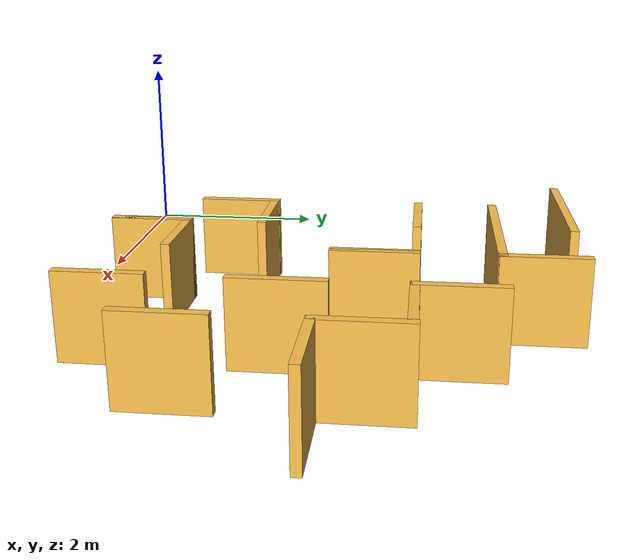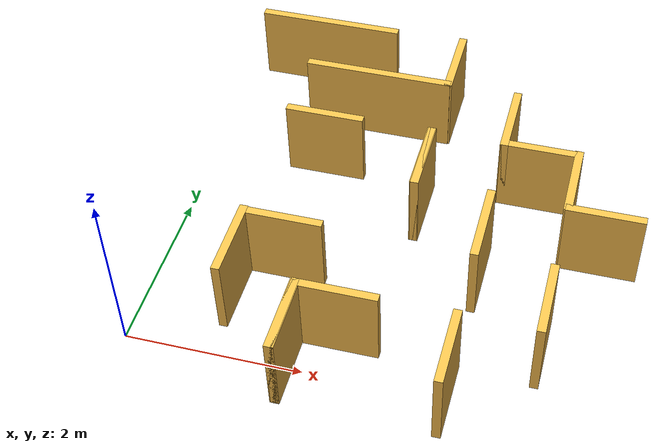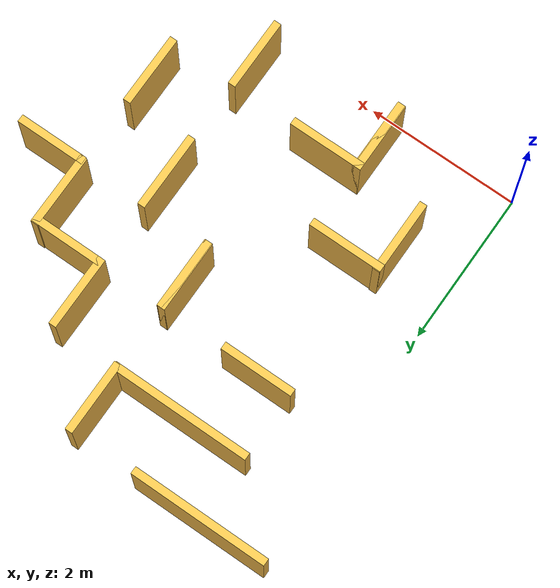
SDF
<sdf version="1.5">
 <model name="maze_train">
  <link name="Wall_19">
   <visual name="Wall_19_Visual">
    <pose>0.8 1.2449999999999999 0 0 0 0</pose>
    <geometry><box><size>0.1 0.99 1</size></box></geometry>
    <material>
     <script><uri>file://media/materials/scripts/gazebo.material</uri><name>Gazebo/Grey</name></script>
     <ambient>1 0.764706 0.305882 1</ambient>
     <diffuse>0.7 0.7 0.7 1</diffuse>
     <specular>0.01 0.01 0.01 1</specular>
     <emissive>0 0 0 1</emissive>
     <shader type="pixel"/>
    </material>
   </visual>
   <collision name="Wall_19_Collision">
    <pose>0.8 1.2449999999999999 0 0 0 0</pose>
    <geometry><box><size>0.1 0.99 1</size></box></geometry>
    <surface>
     <friction><ode><mu>1</mu><mu2>1</mu2><fdir1>0 0 0</fdir1><slip1>0</slip1><slip2>0</slip2></ode></friction>
     <bounce><restitution_coefficient>0</restitution_coefficient><threshold>1e+06</threshold></bounce>
     <contact>
      <collide_without_contact>0</collide_without_contact>
      <collide_without_contact_bitmask>1</collide_without_contact_bitmask>
      <collide_bitmask>1</collide_bitmask>
      <ode>
       <soft_cfm>0</soft_cfm>
       <soft_erp>0.2</soft_erp>
       <kp>1e+13</kp>
       <kd>1</kd>
       <max_vel>0.01</max_vel>
       <min_depth>0</min_depth>
      </ode>
      <bullet>
       <split_impulse>1</split_impulse>
       <split_impulse_penetration_threshold>-0.01</split_impulse_penetration_threshold>
       <soft_cfm>0</soft_cfm>
       <soft_erp>0.2</soft_erp>
       <kp>1e+13</kp>
       <kd>1</kd>
      </bullet>
     </contact>
    </surface>
   </collision>
  </link>
  <link name="Wall_20">
   <visual name="Wall_20_Visual">
    <pose>2.59 3.055 0 0 0 0</pose>
    <geometry><box><size>0.1 0.9700000000000001 1</size></box></geometry>
    <material>
     <script><uri>file://media/materials/scripts/gazebo.material</uri><name>Gazebo/Grey</name></script>
     <ambient>1 0.764706 0.305882 1</ambient>
     <diffuse>0.7 0.7 0.7 1</diffuse>
     <specular>0.01 0.01 0.01 1</specular>
     <emissive>0 0 0 1</emissive>
     <shader type="pixel"/>
    </material>
   </visual>
   <collision name="Wall_20_Collision">
    <pose>2.59 3.055 0 0 0 0</pose>
    <geometry><box><size>0.1 0.9700000000000001 1</size></box></geometry>
    <surface>
     <friction><ode><mu>1</mu><mu2>1</mu2><fdir1>0 0 0</fdir1><slip1>0</slip1><slip2>0</slip2></ode></friction>
     <bounce><restitution_coefficient>0</restitution_coefficient><threshold>1e+06</threshold></bounce>
     <contact>
      <collide_without_contact>0</collide_without_contact>
      <collide_without_contact_bitmask>1</collide_without_contact_bitmask>
      <collide_bitmask>1</collide_bitmask>
      <ode>
       <soft_cfm>0</soft_cfm>
       <soft_erp>0.2</soft_erp>
       <kp>1e+13</kp>
       <kd>1</kd>
       <max_vel>0.01</max_vel>
       <min_depth>0</min_depth>
      </ode>
      <bullet>
       <split_impulse>1</split_impulse>
       <split_impulse_penetration_threshold>-0.01</split_impulse_penetration_threshold>
       <soft_cfm>0</soft_cfm>
       <soft_erp>0.2</soft_erp>
       <kp>1e+13</kp>
       <kd>1</kd>
      </bullet>
     </contact>
    </surface>
   </collision>
  </link>
  <link name="Wall_21">
   <visual name="Wall_21_Visual">
    <pose>4.390000000000001 1.24 0 0 0 0</pose>
    <geometry><box><size>0.1 0.96 1</size></box></geometry>
    <material>
     <script><uri>file://media/materials/scripts/gazebo.material</uri><name>Gazebo/Grey</name></script>
     <ambient>1 0.764706 0.305882 1</ambient>
     <diffuse>0.7 0.7 0.7 1</diffuse>
     <specular>0.01 0.01 0.01 1</specular>
     <emissive>0 0 0 1</emissive>
     <shader type="pixel"/>
    </material>
   </visual>
   <collision name="Wall_21_Collision">
    <pose>4.390000000000001 1.24 0 0 0 0</pose>
    <geometry><box><size>0.1 0.96 1</size></box></geometry>
    <surface>
     <friction><ode><mu>1</mu><mu2>1</mu2><fdir1>0 0 0</fdir1><slip1>0</slip1><slip2>0</slip2></ode></friction>
     <bounce><restitution_coefficient>0</restitution_coefficient><threshold>1e+06</threshold></bounce>
     <contact>
      <collide_without_contact>0</collide_without_contact>
      <collide_without_contact_bitmask>1</collide_without_contact_bitmask>
      <collide_bitmask>1</collide_bitmask>
      <ode>
       <soft_cfm>0</soft_cfm>
       <soft_erp>0.2</soft_erp>
       <kp>1e+13</kp>
       <kd>1</kd>
       <max_vel>0.01</max_vel>
       <min_depth>0</min_depth>
      </ode>
      <bullet>
       <split_impulse>1</split_impulse>
       <split_impulse_penetration_threshold>-0.01</split_impulse_penetration_threshold>
       <soft_cfm>0</soft_cfm>
       <soft_erp>0.2</soft_erp>
       <kp>1e+13</kp>
       <kd>1</kd>
      </bullet>
     </contact>
    </surface>
   </collision>
  </link>
  <link name="Wall_22">
   <visual name="Wall_22_Visual">
    <pose>3.9499999999999997 3.5 0 0 0 0</pose>
    <geometry><box><size>0.9799999999999999 0.1 1</size></box></geometry>
    <material>
     <script><uri>file://media/materials/scripts/gazebo.material</uri><name>Gazebo/Grey</name></script>
     <ambient>1 0.764706 0.305882 1</ambient>
     <diffuse>0.7 0.7 0.7 1</diffuse>
     <specular>0.01 0.01 0.01 1</specular>
     <emissive>0 0 0 1</emissive>
     <shader type="pixel"/>
    </material>
   </visual>
   <collision name="Wall_22_Collision">
    <pose>3.9499999999999997 3.5 0 0 0 0</pose>
    <geometry><box><size>0.9799999999999999 0.1 1</size></box></geometry>
    <surface>
     <friction><ode><mu>1</mu><mu2>1</mu2><fdir1>0 0 0</fdir1><slip1>0</slip1><slip2>0</slip2></ode></friction>
     <bounce><restitution_coefficient>0</restitution_coefficient><threshold>1e+06</threshold></bounce>
     <contact>
      <collide_without_contact>0</collide_without_contact>
      <collide_without_contact_bitmask>1</collide_without_contact_bitmask>
      <collide_bitmask>1</collide_bitmask>
      <ode>
       <soft_cfm>0</soft_cfm>
       <soft_erp>0.2</soft_erp>
       <kp>1e+13</kp>
       <kd>1</kd>
       <max_vel>0.01</max_vel>
       <min_depth>0</min_depth>
      </ode>
      <bullet>
       <split_impulse>1</split_impulse>
       <split_impulse_penetration_threshold>-0.01</split_impulse_penetration_threshold>
       <soft_cfm>0</soft_cfm>
       <soft_erp>0.2</soft_erp>
       <kp>1e+13</kp>
       <kd>1</kd>
      </bullet>
     </contact>
    </surface>
   </collision>
  </link>
  <link name="Wall_23">
   <visual name="Wall_23_Visual">
    <pose>1.25 3.4899999999999998 0 0 0 0</pose>
    <geometry><box><size>0.98 0.1 1</size></box></geometry>
    <material>
     <script><uri>file://media/materials/scripts/gazebo.material</uri><name>Gazebo/Grey</name></script>
     <ambient>1 0.764706 0.305882 1</ambient>
     <diffuse>0.7 0.7 0.7 1</diffuse>
     <specular>0.01 0.01 0.01 1</specular>
     <emissive>0 0 0 1</emissive>
     <shader type="pixel"/>
    </material>
   </visual>
   <collision name="Wall_23_Collision">
    <pose>1.25 3.4899999999999998 0 0 0 0</pose>
    <geometry><box><size>0.98 0.1 1</size></box></geometry>
    <surface>
     <friction><ode><mu>1</mu><mu2>1</mu2><fdir1>0 0 0</fdir1><slip1>0</slip1><slip2>0</slip2></ode></friction>
     <bounce><restitution_coefficient>0</restitution_coefficient><threshold>1e+06</threshold></bounce>
     <contact>
      <collide_without_contact>0</collide_without_contact>
      <collide_without_contact_bitmask>1</collide_without_contact_bitmask>
      <collide_bitmask>1</collide_bitmask>
      <ode>
       <soft_cfm>0</soft_cfm>
       <soft_erp>0.2</soft_erp>
       <kp>1e+13</kp>
       <kd>1</kd>
       <max_vel>0.01</max_vel>
       <min_depth>0</min_depth>
      </ode>
      <bullet>
       <split_impulse>1</split_impulse>
       <split_impulse_penetration_threshold>-0.01</split_impulse_penetration_threshold>
       <soft_cfm>0</soft_cfm>
       <soft_erp>0.2</soft_erp>
       <kp>1e+13</kp>
       <kd>1</kd>
      </bullet>
     </contact>
    </surface>
   </collision>
  </link>
  <link name="Wall_24">
   <visual name="Wall_24_Visual">
    <pose>2.145 0.79 0 0 0 0</pose>
    <geometry><box><size>0.9900000000000001 0.1 1</size></box></geometry>
    <material>
     <script><uri>file://media/materials/scripts/gazebo.material</uri><name>Gazebo/Grey</name></script>
     <ambient>1 0.764706 0.305882 1</ambient>
     <diffuse>0.7 0.7 0.7 1</diffuse>
     <specular>0.01 0.01 0.01 1</specular>
     <emissive>0 0 0 1</emissive>
     <shader type="pixel"/>
    </material>
   </visual>
   <collision name="Wall_24_Collision">
    <pose>2.145 0.79 0 0 0 0</pose>
    <geometry><box><size>0.9900000000000001 0.1 1</size></box></geometry>
    <surface>
     <friction><ode><mu>1</mu><mu2>1</mu2><fdir1>0 0 0</fdir1><slip1>0</slip1><slip2>0</slip2></ode></friction>
     <bounce><restitution_coefficient>0</restitution_coefficient><threshold>1e+06</threshold></bounce>
     <contact>
      <collide_without_contact>0</collide_without_contact>
      <collide_without_contact_bitmask>1</collide_without_contact_bitmask>
      <collide_bitmask>1</collide_bitmask>
      <ode>
       <soft_cfm>0</soft_cfm>
       <soft_erp>0.2</soft_erp>
       <kp>1e+13</kp>
       <kd>1</kd>
       <max_vel>0.01</max_vel>
       <min_depth>0</min_depth>
      </ode>
      <bullet>
       <split_impulse>1</split_impulse>
       <split_impulse_penetration_threshold>-0.01</split_impulse_penetration_threshold>
       <soft_cfm>0</soft_cfm>
       <soft_erp>0.2</soft_erp>
       <kp>1e+13</kp>
       <kd>1</kd>
      </bullet>
     </contact>
    </surface>
   </collision>
  </link>
  <link name="Wall_25">
   <visual name="Wall_25_Visual">
    <pose>2.6 3.055 0 0 0 0</pose>
    <geometry><box><size>0.1 0.9700000000000001 1</size></box></geometry>
    <material>
     <script><uri>file://media/materials/scripts/gazebo.material</uri><name>Gazebo/Grey</name></script>
     <ambient>1 0.764706 0.305882 1</ambient>
     <diffuse>0.7 0.7 0.7 1</diffuse>
     <specular>0.01 0.01 0.01 1</specular>
     <emissive>0 0 0 1</emissive>
     <shader type="pixel"/>
    </material>
   </visual>
   <collision name="Wall_25_Collision">
    <pose>2.6 3.055 0 0 0 0</pose>
    <geometry><box><size>0.1 0.9700000000000001 1</size></box></geometry>
    <surface>
     <friction><ode><mu>1</mu><mu2>1</mu2><fdir1>0 0 0</fdir1><slip1>0</slip1><slip2>0</slip2></ode></friction>
     <bounce><restitution_coefficient>0</restitution_coefficient><threshold>1e+06</threshold></bounce>
     <contact>
      <collide_without_contact>0</collide_without_contact>
      <collide_without_contact_bitmask>1</collide_without_contact_bitmask>
      <collide_bitmask>1</collide_bitmask>
      <ode>
       <soft_cfm>0</soft_cfm>
       <soft_erp>0.2</soft_erp>
       <kp>1e+13</kp>
       <kd>1</kd>
       <max_vel>0.01</max_vel>
       <min_depth>0</min_depth>
      </ode>
      <bullet>
       <split_impulse>1</split_impulse>
       <split_impulse_penetration_threshold>-0.01</split_impulse_penetration_threshold>
       <soft_cfm>0</soft_cfm>
       <soft_erp>0.2</soft_erp>
       <kp>1e+13</kp>
       <kd>1</kd>
      </bullet>
     </contact>
    </surface>
   </collision>
  </link>
  <link name="Wall_27">
   <visual name="Wall_27_Visual">
    <pose>3.5 3.94 0 0 0 0</pose>
    <geometry><box><size>0.1 0.9800000000000003 1</size></box></geometry>
    <material>
     <script><uri>file://media/materials/scripts/gazebo.material</uri><name>Gazebo/Grey</name></script>
     <ambient>1 0.764706 0.305882 1</ambient>
     <diffuse>0.7 0.7 0.7 1</diffuse>
     <specular>0.01 0.01 0.01 1</specular>
     <emissive>0 0 0 1</emissive>
     <shader type="pixel"/>
    </material>
   </visual>
   <collision name="Wall_27_Collision">
    <pose>3.5 3.94 0 0 0 0</pose>
    <geometry><box><size>0.1 0.9800000000000003 1</size></box></geometry>
    <surface>
     <friction><ode><mu>1</mu><mu2>1</mu2><fdir1>0 0 0</fdir1><slip1>0</slip1><slip2>0</slip2></ode></friction>
     <bounce><restitution_coefficient>0</restitution_coefficient><threshold>1e+06</threshold></bounce>
     <contact>
      <collide_without_contact>0</collide_without_contact>
      <collide_without_contact_bitmask>1</collide_without_contact_bitmask>
      <collide_bitmask>1</collide_bitmask>
      <ode>
       <soft_cfm>0</soft_cfm>
       <soft_erp>0.2</soft_erp>
       <kp>1e+13</kp>
       <kd>1</kd>
       <max_vel>0.01</max_vel>
       <min_depth>0</min_depth>
      </ode>
      <bullet>
       <split_impulse>1</split_impulse>
       <split_impulse_penetration_threshold>-0.01</split_impulse_penetration_threshold>
       <soft_cfm>0</soft_cfm>
       <soft_erp>0.2</soft_erp>
       <kp>1e+13</kp>
       <kd>1</kd>
      </bullet>
     </contact>
    </surface>
   </collision>
  </link>
  <link name="Wall_28">
   <visual name="Wall_28_Visual">
    <pose>1.7000000000000002 4.4 0 0 0 0</pose>
    <geometry><box><size>1.8800000000000003 0.1 1</size></box></geometry>
    <material>
     <script><uri>file://media/materials/scripts/gazebo.material</uri><name>Gazebo/Grey</name></script>
     <ambient>1 0.764706 0.305882 1</ambient>
     <diffuse>0.7 0.7 0.7 1</diffuse>
     <specular>0.01 0.01 0.01 1</specular>
     <emissive>0 0 0 1</emissive>
     <shader type="pixel"/>
    </material>
   </visual>
   <collision name="Wall_28_Collision">
    <pose>1.7000000000000002 4.4 0 0 0 0</pose>
    <geometry><box><size>1.8800000000000003 0.1 1</size></box></geometry>
    <surface>
     <friction><ode><mu>1</mu><mu2>1</mu2><fdir1>0 0 0</fdir1><slip1>0</slip1><slip2>0</slip2></ode></friction>
     <bounce><restitution_coefficient>0</restitution_coefficient><threshold>1e+06</threshold></bounce>
     <contact>
      <collide_without_contact>0</collide_without_contact>
      <collide_without_contact_bitmask>1</collide_without_contact_bitmask>
      <collide_bitmask>1</collide_bitmask>
      <ode>
       <soft_cfm>0</soft_cfm>
       <soft_erp>0.2</soft_erp>
       <kp>1e+13</kp>
       <kd>1</kd>
       <max_vel>0.01</max_vel>
       <min_depth>0</min_depth>
      </ode>
      <bullet>
       <split_impulse>1</split_impulse>
       <split_impulse_penetration_threshold>-0.01</split_impulse_penetration_threshold>
       <soft_cfm>0</soft_cfm>
       <soft_erp>0.2</soft_erp>
       <kp>1e+13</kp>
       <kd>1</kd>
      </bullet>
     </contact>
    </surface>
   </collision>
  </link>
  <link name="Wall_29">
   <visual name="Wall_29_Visual">
    <pose>3.4899999999999998 0.36 0 0 0 0</pose>
    <geometry><box><size>0.1 0.96 1</size></box></geometry>
    <material>
     <script><uri>file://media/materials/scripts/gazebo.material</uri><name>Gazebo/Grey</name></script>
     <ambient>1 0.764706 0.305882 1</ambient>
     <diffuse>0.7 0.7 0.7 1</diffuse>
     <specular>0.01 0.01 0.01 1</specular>
     <emissive>0 0 0 1</emissive>
     <shader type="pixel"/>
    </material>
   </visual>
   <collision name="Wall_29_Collision">
    <pose>3.4899999999999998 0.36 0 0 0 0</pose>
    <geometry><box><size>0.1 0.96 1</size></box></geometry>
    <surface>
     <friction><ode><mu>1</mu><mu2>1</mu2><fdir1>0 0 0</fdir1><slip1>0</slip1><slip2>0</slip2></ode></friction>
     <bounce><restitution_coefficient>0</restitution_coefficient><threshold>1e+06</threshold></bounce>
     <contact>
      <collide_without_contact>0</collide_without_contact>
      <collide_without_contact_bitmask>1</collide_without_contact_bitmask>
      <collide_bitmask>1</collide_bitmask>
      <ode>
       <soft_cfm>0</soft_cfm>
       <soft_erp>0.2</soft_erp>
       <kp>1e+13</kp>
       <kd>1</kd>
       <max_vel>0.01</max_vel>
       <min_depth>0</min_depth>
      </ode>
      <bullet>
       <split_impulse>1</split_impulse>
       <split_impulse_penetration_threshold>-0.01</split_impulse_penetration_threshold>
       <soft_cfm>0</soft_cfm>
       <soft_erp>0.2</soft_erp>
       <kp>1e+13</kp>
       <kd>1</kd>
      </bullet>
     </contact>
    </surface>
   </collision>
  </link>
  <link name="Wall_34">
   <visual name="Wall_34_Visual">
    <pose>1.7 0.36 0 0 0 0</pose>
    <geometry><box><size>0.1 0.96 1</size></box></geometry>
    <material>
     <script><uri>file://media/materials/scripts/gazebo.material</uri><name>Gazebo/Grey</name></script>
     <ambient>1 0.764706 0.305882 1</ambient>
     <diffuse>0.7 0.7 0.7 1</diffuse>
     <specular>0.01 0.01 0.01 1</specular>
     <emissive>0 0 0 1</emissive>
     <shader type="pixel"/>
    </material>
   </visual>
   <collision name="Wall_34_Collision">
    <pose>1.7 0.36 0 0 0 0</pose>
    <geometry><box><size>0.1 0.96 1</size></box></geometry>
    <surface>
     <friction><ode><mu>1</mu><mu2>1</mu2><fdir1>0 0 0</fdir1><slip1>0</slip1><slip2>0</slip2></ode></friction>
     <bounce><restitution_coefficient>0</restitution_coefficient><threshold>1e+06</threshold></bounce>
     <contact>
      <collide_without_contact>0</collide_without_contact>
      <collide_without_contact_bitmask>1</collide_without_contact_bitmask>
      <collide_bitmask>1</collide_bitmask>
      <ode>
       <soft_cfm>0</soft_cfm>
       <soft_erp>0.2</soft_erp>
       <kp>1e+13</kp>
       <kd>1</kd>
       <max_vel>0.01</max_vel>
       <min_depth>0</min_depth>
      </ode>
      <bullet>
       <split_impulse>1</split_impulse>
       <split_impulse_penetration_threshold>-0.01</split_impulse_penetration_threshold>
       <soft_cfm>0</soft_cfm>
       <soft_erp>0.2</soft_erp>
       <kp>1e+13</kp>
       <kd>1</kd>
      </bullet>
     </contact>
    </surface>
   </collision>
  </link>
  <link name="Wall_36">
   <visual name="Wall_36_Visual">
    <pose>1.69 0.36 0 0 0 0</pose>
    <geometry><box><size>0.1 0.96 1</size></box></geometry>
    <material>
     <script><uri>file://media/materials/scripts/gazebo.material</uri><name>Gazebo/Grey</name></script>
     <ambient>1 0.764706 0.305882 1</ambient>
     <diffuse>0.7 0.7 0.7 1</diffuse>
     <specular>0.01 0.01 0.01 1</specular>
     <emissive>0 0 0 1</emissive>
     <shader type="pixel"/>
    </material>
   </visual>
   <collision name="Wall_36_Collision">
    <pose>1.69 0.36 0 0 0 0</pose>
    <geometry><box><size>0.1 0.96 1</size></box></geometry>
    <surface>
     <friction><ode><mu>1</mu><mu2>1</mu2><fdir1>0 0 0</fdir1><slip1>0</slip1><slip2>0</slip2></ode></friction>
     <bounce><restitution_coefficient>0</restitution_coefficient><threshold>1e+06</threshold></bounce>
     <contact>
      <collide_without_contact>0</collide_without_contact>
      <collide_without_contact_bitmask>1</collide_without_contact_bitmask>
      <collide_bitmask>1</collide_bitmask>
      <ode>
       <soft_cfm>0</soft_cfm>
       <soft_erp>0.2</soft_erp>
       <kp>1e+13</kp>
       <kd>1</kd>
       <max_vel>0.01</max_vel>
       <min_depth>0</min_depth>
      </ode>
      <bullet>
       <split_impulse>1</split_impulse>
       <split_impulse_penetration_threshold>-0.01</split_impulse_penetration_threshold>
       <soft_cfm>0</soft_cfm>
       <soft_erp>0.2</soft_erp>
       <kp>1e+13</kp>
       <kd>1</kd>
      </bullet>
     </contact>
    </surface>
   </collision>
  </link>
  <link name="Wall_37">
   <visual name="Wall_37_Visual">
    <pose>0.8150000000000001 5.2700000000000005 0 0 0 0</pose>
    <geometry><box><size>1.85 0.1 1</size></box></geometry>
    <material>
     <script><uri>file://media/materials/scripts/gazebo.material</uri><name>Gazebo/Grey</name></script>
     <ambient>1 0.764706 0.305882 1</ambient>
     <diffuse>0.7 0.7 0.7 1</diffuse>
     <specular>0.01 0.01 0.01 1</specular>
     <emissive>0 0 0 1</emissive>
     <shader type="pixel"/>
    </material>
   </visual>
   <collision name="Wall_37_Collision">
    <pose>0.8150000000000001 5.2700000000000005 0 0 0 0</pose>
    <geometry><box><size>1.85 0.1 1</size></box></geometry>
    <surface>
     <friction><ode><mu>1</mu><mu2>1</mu2><fdir1>0 0 0</fdir1><slip1>0</slip1><slip2>0</slip2></ode></friction>
     <bounce><restitution_coefficient>0</restitution_coefficient><threshold>1e+06</threshold></bounce>
     <contact>
      <collide_without_contact>0</collide_without_contact>
      <collide_without_contact_bitmask>1</collide_without_contact_bitmask>
      <collide_bitmask>1</collide_bitmask>
      <ode>
       <soft_cfm>0</soft_cfm>
       <soft_erp>0.2</soft_erp>
       <kp>1e+13</kp>
       <kd>1</kd>
       <max_vel>0.01</max_vel>
       <min_depth>0</min_depth>
      </ode>
      <bullet>
       <split_impulse>1</split_impulse>
       <split_impulse_penetration_threshold>-0.01</split_impulse_penetration_threshold>
       <soft_cfm>0</soft_cfm>
       <soft_erp>0.2</soft_erp>
       <kp>1e+13</kp>
       <kd>1</kd>
      </bullet>
     </contact>
    </surface>
   </collision>
  </link>
  <link name="Wall_38">
   <visual name="Wall_38_Visual">
    <pose>2.61 4.845000000000001 0 0 0 0</pose>
    <geometry><box><size>0.1 0.9699999999999996 1</size></box></geometry>
    <material>
     <script><uri>file://media/materials/scripts/gazebo.material</uri><name>Gazebo/Grey</name></script>
     <ambient>1 0.764706 0.305882 1</ambient>
     <diffuse>0.7 0.7 0.7 1</diffuse>
     <specular>0.01 0.01 0.01 1</specular>
     <emissive>0 0 0 1</emissive>
     <shader type="pixel"/>
    </material>
   </visual>
   <collision name="Wall_38_Collision">
    <pose>2.61 4.845000000000001 0 0 0 0</pose>
    <geometry><box><size>0.1 0.9699999999999996 1</size></box></geometry>
    <surface>
     <friction><ode><mu>1</mu><mu2>1</mu2><fdir1>0 0 0</fdir1><slip1>0</slip1><slip2>0</slip2></ode></friction>
     <bounce><restitution_coefficient>0</restitution_coefficient><threshold>1e+06</threshold></bounce>
     <contact>
      <collide_without_contact>0</collide_without_contact>
      <collide_without_contact_bitmask>1</collide_without_contact_bitmask>
      <collide_bitmask>1</collide_bitmask>
      <ode>
       <soft_cfm>0</soft_cfm>
       <soft_erp>0.2</soft_erp>
       <kp>1e+13</kp>
       <kd>1</kd>
       <max_vel>0.01</max_vel>
       <min_depth>0</min_depth>
      </ode>
      <bullet>
       <split_impulse>1</split_impulse>
       <split_impulse_penetration_threshold>-0.01</split_impulse_penetration_threshold>
       <soft_cfm>0</soft_cfm>
       <soft_erp>0.2</soft_erp>
       <kp>1e+13</kp>
       <kd>1</kd>
      </bullet>
     </contact>
    </surface>
   </collision>
  </link>
  <link name="Wall_39">
   <visual name="Wall_39_Visual">
    <pose>4.4 3.065 0 0 0 0</pose>
    <geometry><box><size>0.1 0.9900000000000001 1</size></box></geometry>
    <material>
     <script><uri>file://media/materials/scripts/gazebo.material</uri><name>Gazebo/Grey</name></script>
     <ambient>1 0.764706 0.305882 1</ambient>
     <diffuse>0.7 0.7 0.7 1</diffuse>
     <specular>0.01 0.01 0.01 1</specular>
     <emissive>0 0 0 1</emissive>
     <shader type="pixel"/>
    </material>
   </visual>
   <collision name="Wall_39_Collision">
    <pose>4.4 3.065 0 0 0 0</pose>
    <geometry><box><size>0.1 0.9900000000000001 1</size></box></geometry>
    <surface>
     <friction><ode><mu>1</mu><mu2>1</mu2><fdir1>0 0 0</fdir1><slip1>0</slip1><slip2>0</slip2></ode></friction>
     <bounce><restitution_coefficient>0</restitution_coefficient><threshold>1e+06</threshold></bounce>
     <contact>
      <collide_without_contact>0</collide_without_contact>
      <collide_without_contact_bitmask>1</collide_without_contact_bitmask>
      <collide_bitmask>1</collide_bitmask>
      <ode>
       <soft_cfm>0</soft_cfm>
       <soft_erp>0.2</soft_erp>
       <kp>1e+13</kp>
       <kd>1</kd>
       <max_vel>0.01</max_vel>
       <min_depth>0</min_depth>
      </ode>
      <bullet>
       <split_impulse>1</split_impulse>
       <split_impulse_penetration_threshold>-0.01</split_impulse_penetration_threshold>
       <soft_cfm>0</soft_cfm>
       <soft_erp>0.2</soft_erp>
       <kp>1e+13</kp>
       <kd>1</kd>
      </bullet>
     </contact>
    </surface>
   </collision>
  </link>
  <link name="Wall_40">
   <visual name="Wall_40_Visual">
    <pose>4.835000000000001 2.61 0 0 0 0</pose>
    <geometry><box><size>0.9300000000000005 0.1 1</size></box></geometry>
    <material>
     <script><uri>file://media/materials/scripts/gazebo.material</uri><name>Gazebo/Grey</name></script>
     <ambient>1 0.764706 0.305882 1</ambient>
     <diffuse>0.7 0.7 0.7 1</diffuse>
     <specular>0.01 0.01 0.01 1</specular>
     <emissive>0 0 0 1</emissive>
     <shader type="pixel"/>
    </material>
   </visual>
   <collision name="Wall_40_Collision">
    <pose>4.835000000000001 2.61 0 0 0 0</pose>
    <geometry><box><size>0.9300000000000005 0.1 1</size></box></geometry>
    <surface>
     <friction><ode><mu>1</mu><mu2>1</mu2><fdir1>0 0 0</fdir1><slip1>0</slip1><slip2>0</slip2></ode></friction>
     <bounce><restitution_coefficient>0</restitution_coefficient><threshold>1e+06</threshold></bounce>
     <contact>
      <collide_without_contact>0</collide_without_contact>
      <collide_without_contact_bitmask>1</collide_without_contact_bitmask>
      <collide_bitmask>1</collide_bitmask>
      <ode>
       <soft_cfm>0</soft_cfm>
       <soft_erp>0.2</soft_erp>
       <kp>1e+13</kp>
       <kd>1</kd>
       <max_vel>0.01</max_vel>
       <min_depth>0</min_depth>
      </ode>
      <bullet>
       <split_impulse>1</split_impulse>
       <split_impulse_penetration_threshold>-0.01</split_impulse_penetration_threshold>
       <soft_cfm>0</soft_cfm>
       <soft_erp>0.2</soft_erp>
       <kp>1e+13</kp>
       <kd>1</kd>
      </bullet>
     </contact>
    </surface>
   </collision>
  </link>
  <link name="Wall_41">
   <visual name="Wall_41_Visual">
    <pose>3.5 2.155 0 0 0 0</pose>
    <geometry><box><size>0.1 1.03 1</size></box></geometry>
    <material>
     <script><uri>file://media/materials/scripts/gazebo.material</uri><name>Gazebo/Grey</name></script>
     <ambient>1 0.764706 0.305882 1</ambient>
     <diffuse>0.7 0.7 0.7 1</diffuse>
     <specular>0.01 0.01 0.01 1</specular>
     <emissive>0 0 0 1</emissive>
     <shader type="pixel"/>
    </material>
   </visual>
   <collision name="Wall_41_Collision">
    <pose>3.5 2.155 0 0 0 0</pose>
    <geometry><box><size>0.1 1.03 1</size></box></geometry>
    <surface>
     <friction><ode><mu>1</mu><mu2>1</mu2><fdir1>0 0 0</fdir1><slip1>0</slip1><slip2>0</slip2></ode></friction>
     <bounce><restitution_coefficient>0</restitution_coefficient><threshold>1e+06</threshold></bounce>
     <contact>
      <collide_without_contact>0</collide_without_contact>
      <collide_without_contact_bitmask>1</collide_without_contact_bitmask>
      <collide_bitmask>1</collide_bitmask>
      <ode>
       <soft_cfm>0</soft_cfm>
       <soft_erp>0.2</soft_erp>
       <kp>1e+13</kp>
       <kd>1</kd>
       <max_vel>0.01</max_vel>
       <min_depth>0</min_depth>
      </ode>
      <bullet>
       <split_impulse>1</split_impulse>
       <split_impulse_penetration_threshold>-0.01</split_impulse_penetration_threshold>
       <soft_cfm>0</soft_cfm>
       <soft_erp>0.2</soft_erp>
       <kp>1e+13</kp>
       <kd>1</kd>
      </bullet>
     </contact>
    </surface>
   </collision>
  </link>
  <link name="Wall_42">
   <visual name="Wall_42_Visual">
    <pose>1.25 1.68 0 0 0 0</pose>
    <geometry><box><size>1.0 0.1 1</size></box></geometry>
    <material>
     <script><uri>file://media/materials/scripts/gazebo.material</uri><name>Gazebo/Grey</name></script>
     <ambient>1 0.764706 0.305882 1</ambient>
     <diffuse>0.7 0.7 0.7 1</diffuse>
     <specular>0.01 0.01 0.01 1</specular>
     <emissive>0 0 0 1</emissive>
     <shader type="pixel"/>
    </material>
   </visual>
   <collision name="Wall_42_Collision">
    <pose>1.25 1.68 0 0 0 0</pose>
    <geometry><box><size>1.0 0.1 1</size></box></geometry>
    <surface>
     <friction><ode><mu>1</mu><mu2>1</mu2><fdir1>0 0 0</fdir1><slip1>0</slip1><slip2>0</slip2></ode></friction>
     <bounce><restitution_coefficient>0</restitution_coefficient><threshold>1e+06</threshold></bounce>
     <contact>
      <collide_without_contact>0</collide_without_contact>
      <collide_without_contact_bitmask>1</collide_without_contact_bitmask>
      <collide_bitmask>1</collide_bitmask>
      <ode>
       <soft_cfm>0</soft_cfm>
       <soft_erp>0.2</soft_erp>
       <kp>1e+13</kp>
       <kd>1</kd>
       <max_vel>0.01</max_vel>
       <min_depth>0</min_depth>
      </ode>
      <bullet>
       <split_impulse>1</split_impulse>
       <split_impulse_penetration_threshold>-0.01</split_impulse_penetration_threshold>
       <soft_cfm>0</soft_cfm>
       <soft_erp>0.2</soft_erp>
       <kp>1e+13</kp>
       <kd>1</kd>
      </bullet>
     </contact>
    </surface>
   </collision>
  </link>
  <static>1</static>
 </model>
</sdf>
